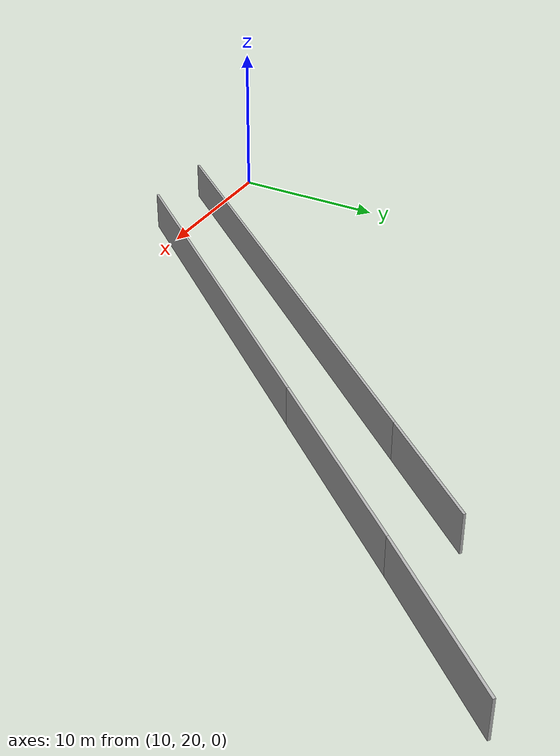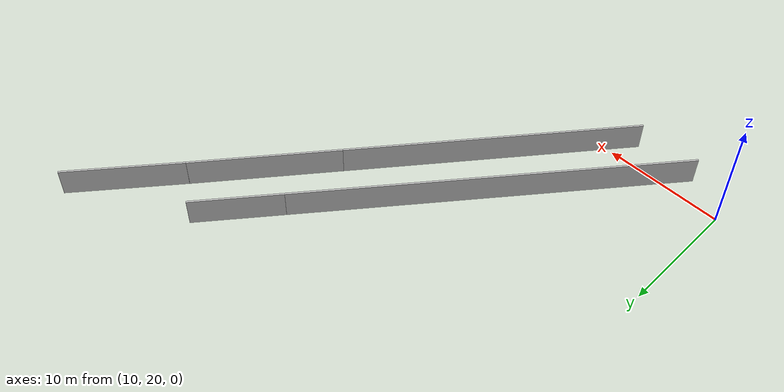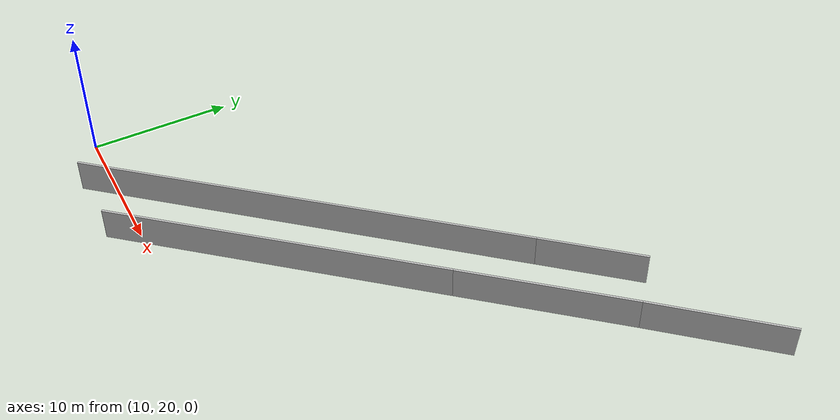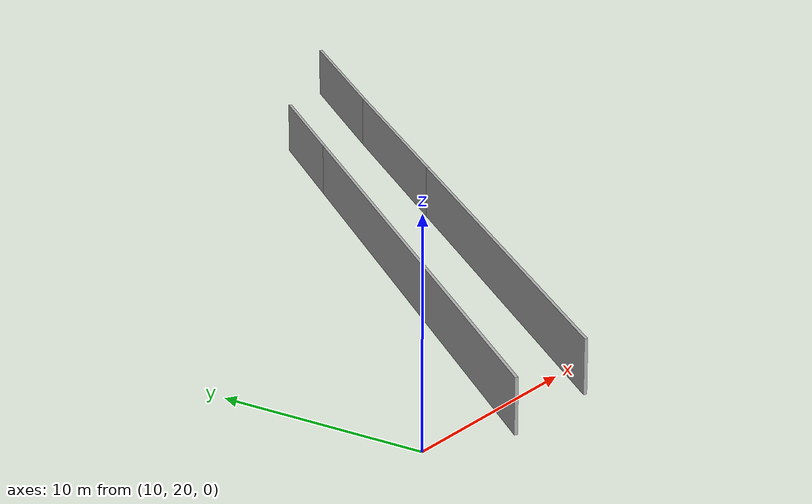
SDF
<?xml version="1.0" ?>
<sdf version="1.6">
  <model name="sps_1244">
    <pose frame="">0 0 0 0 -0 0</pose>
    <static>1</static>
    <self_collide>0</self_collide>
    <allow_auto_disable>0</allow_auto_disable>
    <link name="Wall46">
      <kinematic>0</kinematic>
      <gravity>1</gravity>
      <self_collide>0</self_collide>
      <collision name="collision">
        <geometry>
          <box>
            <size>9.91273 0.15 2.5</size>
          </box>
        </geometry>
        <pose frame="">0 0 0 0 -0 0</pose>
      </collision>
      <visual name="visual">
        <geometry>
          <box>
            <size>9.91273 0.15 2.5</size>
          </box>
        </geometry>
        <pose frame="">0 0 0 0 -0 0</pose>
        <cast_shadows>1</cast_shadows>
        <transparency>0.0</transparency>
      </visual>
      <pose frame="">45.5794 49.8246 1.25 0 0 -2.2749</pose>
    </link>
    <link name="Wall210">
      <kinematic>0</kinematic>
      <gravity>1</gravity>
      <self_collide>0</self_collide>
      <collision name="collision">
        <geometry>
          <box>
            <size>7.53093 0.15 2.5</size>
          </box>
        </geometry>
        <pose frame="">0 0 0 0 -0 0</pose>
      </collision>
      <visual name="visual">
        <geometry>
          <box>
            <size>7.53093 0.15 2.5</size>
          </box>
        </geometry>
        <pose frame="">0 0 0 0 -0 0</pose>
        <cast_shadows>1</cast_shadows>
        <transparency>0.0</transparency>
      </visual>
      <pose frame="">36.8851 45.7124 1.25 0 0 -2.26727</pose>
    </link>
    <link name="Wall211">
      <kinematic>0</kinematic>
      <gravity>1</gravity>
      <self_collide>0</self_collide>
      <collision name="collision">
        <geometry>
          <box>
            <size>32.4998 0.15 2.5</size>
          </box>
        </geometry>
        <pose frame="">0 0 0 0 -0 0</pose>
      </collision>
      <visual name="visual">
        <geometry>
          <box>
            <size>32.4998 0.15 2.5</size>
          </box>
        </geometry>
        <pose frame="">0 0 0 0 -0 0</pose>
        <cast_shadows>1</cast_shadows>
        <transparency>0.0</transparency>
      </visual>
      <pose frame="">24.0448 30.3585 1.25 0 0 -2.26727</pose>
    </link>
    <link name="Wall223">
      <kinematic>0</kinematic>
      <gravity>1</gravity>
      <self_collide>0</self_collide>
      <collision name="collision">
        <geometry>
          <box>
            <size>24.2854 0.15 2.5</size>
          </box>
        </geometry>
        <pose frame="">0 0 0 0 -0 0</pose>
      </collision>
      <visual name="visual">
        <geometry>
          <box>
            <size>24.2854 0.15 2.5</size>
          </box>
        </geometry>
        <pose frame="">0 0 0 0 -0 0</pose>
        <cast_shadows>1</cast_shadows>
        <transparency>0.0</transparency>
      </visual>
      <pose frame="">26.7001 27.2248 1.25 0 -0 0.876505</pose>
    </link>
    <link name="Wall224">
      <kinematic>0</kinematic>
      <gravity>1</gravity>
      <self_collide>0</self_collide>
      <collision name="collision">
        <geometry>
          <box>
            <size>12.349 0.15 2.5</size>
          </box>
        </geometry>
        <pose frame="">0 0 0 0 -0 0</pose>
      </collision>
      <visual name="visual">
        <geometry>
          <box>
            <size>12.349 0.15 2.5</size>
          </box>
        </geometry>
        <pose frame="">0 0 0 0 -0 0</pose>
        <cast_shadows>1</cast_shadows>
        <transparency>0.0</transparency>
      </visual>
      <pose frame="">38.4202 41.3017 1.25 0 -0 0.876505</pose>
    </link>
  </model>
</sdf>
